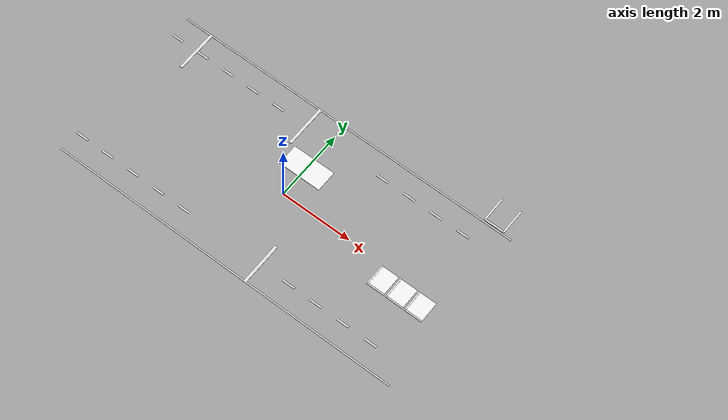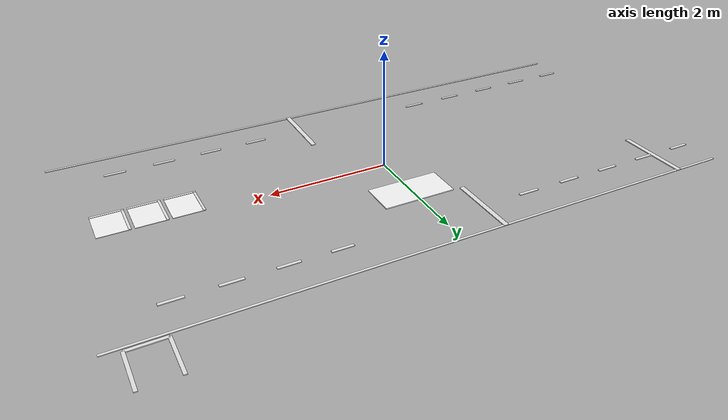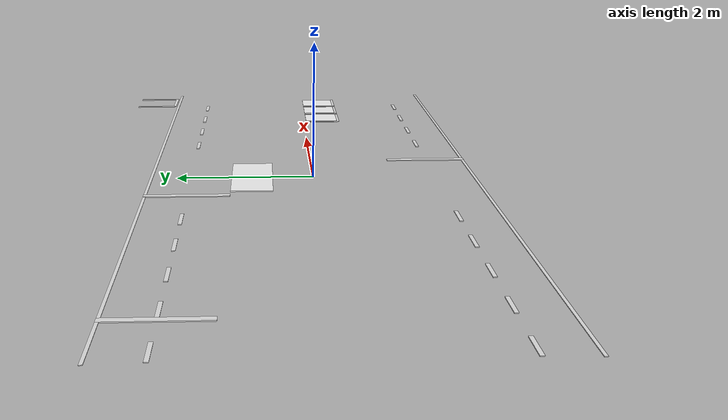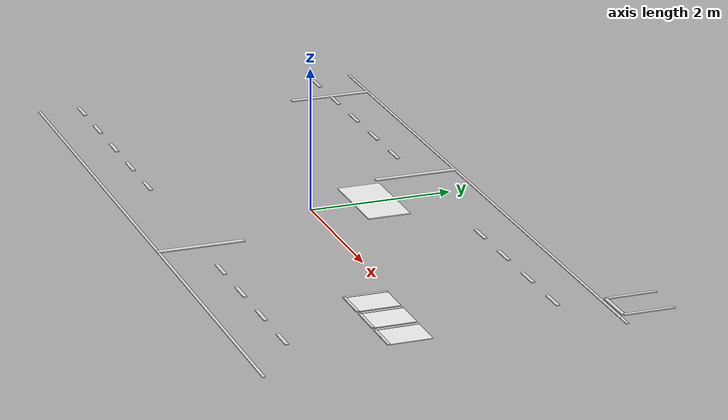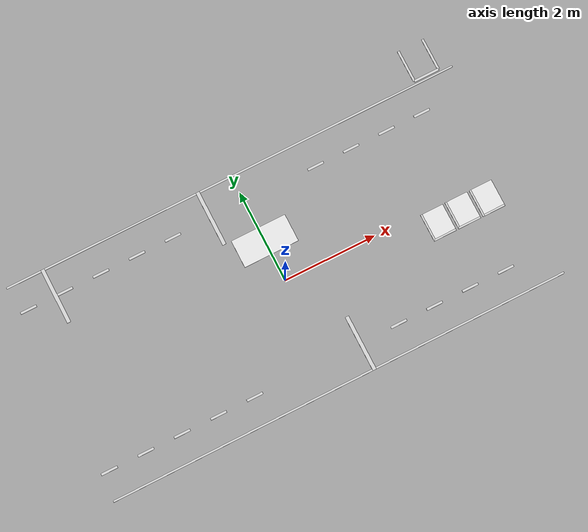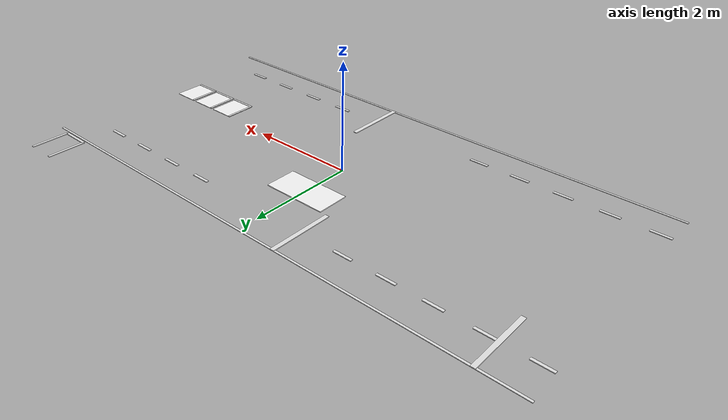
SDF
<sdf version="1.6">
 <world name="sq_community">
  <model name="sq_markings">
   <static>1</static>
   <link name="dash_1.8_-4.80">
    <visual name="dash_1.8_-4.80_v">
     <pose>-4.8 1.8 0.008 0 0 0</pose>
     <geometry><box><size>0.35 0.05 0.012</size></box></geometry>
     <material>
      <script><uri>file://media/materials/scripts/gazebo.material</uri><name>Gazebo/White</name></script>
      <ambient>0.506 0.44 0.0825 1</ambient>
      <diffuse>0.92 0.8 0.15 1</diffuse>
      <specular>0.1 0.1 0.1 1</specular>
      <emissive>0 0 0 1</emissive>
     </material>
    </visual>
   </link>
   <link name="dash_1.8_-4.00">
    <visual name="dash_1.8_-4.00_v">
     <pose>-4 1.8 0.008 0 0 0</pose>
     <geometry><box><size>0.35 0.05 0.012</size></box></geometry>
     <material>
      <script><uri>file://media/materials/scripts/gazebo.material</uri><name>Gazebo/White</name></script>
      <ambient>0.506 0.44 0.0825 1</ambient>
      <diffuse>0.92 0.8 0.15 1</diffuse>
      <specular>0.1 0.1 0.1 1</specular>
      <emissive>0 0 0 1</emissive>
     </material>
    </visual>
   </link>
   <link name="dash_1.8_-3.20">
    <visual name="dash_1.8_-3.20_v">
     <pose>-3.2 1.8 0.008 0 0 0</pose>
     <geometry><box><size>0.35 0.05 0.012</size></box></geometry>
     <material>
      <script><uri>file://media/materials/scripts/gazebo.material</uri><name>Gazebo/White</name></script>
      <ambient>0.506 0.44 0.0825 1</ambient>
      <diffuse>0.92 0.8 0.15 1</diffuse>
      <specular>0.1 0.1 0.1 1</specular>
      <emissive>0 0 0 1</emissive>
     </material>
    </visual>
   </link>
   <link name="dash_1.8_-2.40">
    <visual name="dash_1.8_-2.40_v">
     <pose>-2.4 1.8 0.008 0 0 0</pose>
     <geometry><box><size>0.35 0.05 0.012</size></box></geometry>
     <material>
      <script><uri>file://media/materials/scripts/gazebo.material</uri><name>Gazebo/White</name></script>
      <ambient>0.506 0.44 0.0825 1</ambient>
      <diffuse>0.92 0.8 0.15 1</diffuse>
      <specular>0.1 0.1 0.1 1</specular>
      <emissive>0 0 0 1</emissive>
     </material>
    </visual>
   </link>
   <link name="dash_1.8_-1.60">
    <visual name="dash_1.8_-1.60_v">
     <pose>-1.6 1.8 0.008 0 0 0</pose>
     <geometry><box><size>0.35 0.05 0.012</size></box></geometry>
     <material>
      <script><uri>file://media/materials/scripts/gazebo.material</uri><name>Gazebo/White</name></script>
      <ambient>0.506 0.44 0.0825 1</ambient>
      <diffuse>0.92 0.8 0.15 1</diffuse>
      <specular>0.1 0.1 0.1 1</specular>
      <emissive>0 0 0 1</emissive>
     </material>
    </visual>
   </link>
   <link name="dash_1.8_1.60">
    <visual name="dash_1.8_1.60_v">
     <pose>1.6 1.8 0.008 0 0 0</pose>
     <geometry><box><size>0.35 0.05 0.012</size></box></geometry>
     <material>
      <script><uri>file://media/materials/scripts/gazebo.material</uri><name>Gazebo/White</name></script>
      <ambient>0.506 0.44 0.0825 1</ambient>
      <diffuse>0.92 0.8 0.15 1</diffuse>
      <specular>0.1 0.1 0.1 1</specular>
      <emissive>0 0 0 1</emissive>
     </material>
    </visual>
   </link>
   <link name="dash_1.8_2.40">
    <visual name="dash_1.8_2.40_v">
     <pose>2.4 1.8 0.008 0 0 0</pose>
     <geometry><box><size>0.35 0.05 0.012</size></box></geometry>
     <material>
      <script><uri>file://media/materials/scripts/gazebo.material</uri><name>Gazebo/White</name></script>
      <ambient>0.506 0.44 0.0825 1</ambient>
      <diffuse>0.92 0.8 0.15 1</diffuse>
      <specular>0.1 0.1 0.1 1</specular>
      <emissive>0 0 0 1</emissive>
     </material>
    </visual>
   </link>
   <link name="dash_1.8_3.20">
    <visual name="dash_1.8_3.20_v">
     <pose>3.2 1.8 0.008 0 0 0</pose>
     <geometry><box><size>0.35 0.05 0.012</size></box></geometry>
     <material>
      <script><uri>file://media/materials/scripts/gazebo.material</uri><name>Gazebo/White</name></script>
      <ambient>0.506 0.44 0.0825 1</ambient>
      <diffuse>0.92 0.8 0.15 1</diffuse>
      <specular>0.1 0.1 0.1 1</specular>
      <emissive>0 0 0 1</emissive>
     </material>
    </visual>
   </link>
   <link name="dash_1.8_4.00">
    <visual name="dash_1.8_4.00_v">
     <pose>4 1.8 0.008 0 0 0</pose>
     <geometry><box><size>0.35 0.05 0.012</size></box></geometry>
     <material>
      <script><uri>file://media/materials/scripts/gazebo.material</uri><name>Gazebo/White</name></script>
      <ambient>0.506 0.44 0.0825 1</ambient>
      <diffuse>0.92 0.8 0.15 1</diffuse>
      <specular>0.1 0.1 0.1 1</specular>
      <emissive>0 0 0 1</emissive>
     </material>
    </visual>
   </link>
   <link name="dash_-1.8_-4.80">
    <visual name="dash_-1.8_-4.80_v">
     <pose>-4.8 -1.8 0.008 0 0 0</pose>
     <geometry><box><size>0.35 0.05 0.012</size></box></geometry>
     <material>
      <script><uri>file://media/materials/scripts/gazebo.material</uri><name>Gazebo/White</name></script>
      <ambient>0.506 0.44 0.0825 1</ambient>
      <diffuse>0.92 0.8 0.15 1</diffuse>
      <specular>0.1 0.1 0.1 1</specular>
      <emissive>0 0 0 1</emissive>
     </material>
    </visual>
   </link>
   <link name="dash_-1.8_-4.00">
    <visual name="dash_-1.8_-4.00_v">
     <pose>-4 -1.8 0.008 0 0 0</pose>
     <geometry><box><size>0.35 0.05 0.012</size></box></geometry>
     <material>
      <script><uri>file://media/materials/scripts/gazebo.material</uri><name>Gazebo/White</name></script>
      <ambient>0.506 0.44 0.0825 1</ambient>
      <diffuse>0.92 0.8 0.15 1</diffuse>
      <specular>0.1 0.1 0.1 1</specular>
      <emissive>0 0 0 1</emissive>
     </material>
    </visual>
   </link>
   <link name="dash_-1.8_-3.20">
    <visual name="dash_-1.8_-3.20_v">
     <pose>-3.2 -1.8 0.008 0 0 0</pose>
     <geometry><box><size>0.35 0.05 0.012</size></box></geometry>
     <material>
      <script><uri>file://media/materials/scripts/gazebo.material</uri><name>Gazebo/White</name></script>
      <ambient>0.506 0.44 0.0825 1</ambient>
      <diffuse>0.92 0.8 0.15 1</diffuse>
      <specular>0.1 0.1 0.1 1</specular>
      <emissive>0 0 0 1</emissive>
     </material>
    </visual>
   </link>
   <link name="dash_-1.8_-2.40">
    <visual name="dash_-1.8_-2.40_v">
     <pose>-2.4 -1.8 0.008 0 0 0</pose>
     <geometry><box><size>0.35 0.05 0.012</size></box></geometry>
     <material>
      <script><uri>file://media/materials/scripts/gazebo.material</uri><name>Gazebo/White</name></script>
      <ambient>0.506 0.44 0.0825 1</ambient>
      <diffuse>0.92 0.8 0.15 1</diffuse>
      <specular>0.1 0.1 0.1 1</specular>
      <emissive>0 0 0 1</emissive>
     </material>
    </visual>
   </link>
   <link name="dash_-1.8_-1.60">
    <visual name="dash_-1.8_-1.60_v">
     <pose>-1.6 -1.8 0.008 0 0 0</pose>
     <geometry><box><size>0.35 0.05 0.012</size></box></geometry>
     <material>
      <script><uri>file://media/materials/scripts/gazebo.material</uri><name>Gazebo/White</name></script>
      <ambient>0.506 0.44 0.0825 1</ambient>
      <diffuse>0.92 0.8 0.15 1</diffuse>
      <specular>0.1 0.1 0.1 1</specular>
      <emissive>0 0 0 1</emissive>
     </material>
    </visual>
   </link>
   <link name="dash_-1.8_1.60">
    <visual name="dash_-1.8_1.60_v">
     <pose>1.6 -1.8 0.008 0 0 0</pose>
     <geometry><box><size>0.35 0.05 0.012</size></box></geometry>
     <material>
      <script><uri>file://media/materials/scripts/gazebo.material</uri><name>Gazebo/White</name></script>
      <ambient>0.506 0.44 0.0825 1</ambient>
      <diffuse>0.92 0.8 0.15 1</diffuse>
      <specular>0.1 0.1 0.1 1</specular>
      <emissive>0 0 0 1</emissive>
     </material>
    </visual>
   </link>
   <link name="dash_-1.8_2.40">
    <visual name="dash_-1.8_2.40_v">
     <pose>2.4 -1.8 0.008 0 0 0</pose>
     <geometry><box><size>0.35 0.05 0.012</size></box></geometry>
     <material>
      <script><uri>file://media/materials/scripts/gazebo.material</uri><name>Gazebo/White</name></script>
      <ambient>0.506 0.44 0.0825 1</ambient>
      <diffuse>0.92 0.8 0.15 1</diffuse>
      <specular>0.1 0.1 0.1 1</specular>
      <emissive>0 0 0 1</emissive>
     </material>
    </visual>
   </link>
   <link name="dash_-1.8_3.20">
    <visual name="dash_-1.8_3.20_v">
     <pose>3.2 -1.8 0.008 0 0 0</pose>
     <geometry><box><size>0.35 0.05 0.012</size></box></geometry>
     <material>
      <script><uri>file://media/materials/scripts/gazebo.material</uri><name>Gazebo/White</name></script>
      <ambient>0.506 0.44 0.0825 1</ambient>
      <diffuse>0.92 0.8 0.15 1</diffuse>
      <specular>0.1 0.1 0.1 1</specular>
      <emissive>0 0 0 1</emissive>
     </material>
    </visual>
   </link>
   <link name="dash_-1.8_4.00">
    <visual name="dash_-1.8_4.00_v">
     <pose>4 -1.8 0.008 0 0 0</pose>
     <geometry><box><size>0.35 0.05 0.012</size></box></geometry>
     <material>
      <script><uri>file://media/materials/scripts/gazebo.material</uri><name>Gazebo/White</name></script>
      <ambient>0.506 0.44 0.0825 1</ambient>
      <diffuse>0.92 0.8 0.15 1</diffuse>
      <specular>0.1 0.1 0.1 1</specular>
      <emissive>0 0 0 1</emissive>
     </material>
    </visual>
   </link>
   <link name="edge_1.8">
    <visual name="edge_1.8_v">
     <pose>0 2.38 0.007 0 0 0</pose>
     <geometry><box><size>10 0.04 0.01</size></box></geometry>
     <material>
      <script><uri>file://media/materials/scripts/gazebo.material</uri><name>Gazebo/White</name></script>
      <ambient>0.5225 0.5225 0.5225 1</ambient>
      <diffuse>0.95 0.95 0.95 1</diffuse>
      <specular>0.1 0.1 0.1 1</specular>
      <emissive>0 0 0 1</emissive>
     </material>
    </visual>
   </link>
   <link name="edge_-1.8">
    <visual name="edge_-1.8_v">
     <pose>0 -2.38 0.007 0 0 0</pose>
     <geometry><box><size>10 0.04 0.01</size></box></geometry>
     <material>
      <script><uri>file://media/materials/scripts/gazebo.material</uri><name>Gazebo/White</name></script>
      <ambient>0.5225 0.5225 0.5225 1</ambient>
      <diffuse>0.95 0.95 0.95 1</diffuse>
      <specular>0.1 0.1 0.1 1</specular>
      <emissive>0 0 0 1</emissive>
     </material>
    </visual>
   </link>
   <link name="start_line">
    <visual name="start_line_v">
     <pose>-4.2 1.8 0.009 0 0 0</pose>
     <geometry><box><size>0.08 1.2 0.014</size></box></geometry>
     <material>
      <script><uri>file://media/materials/scripts/gazebo.material</uri><name>Gazebo/White</name></script>
      <ambient>0.5225 0.5225 0.5225 1</ambient>
      <diffuse>0.95 0.95 0.95 1</diffuse>
      <specular>0.1 0.1 0.1 1</specular>
      <emissive>0 0 0 1</emissive>
     </material>
    </visual>
   </link>
   <link name="wait_a">
    <visual name="wait_a_v">
     <pose>-0.75 1.8 0.009 0 0 0</pose>
     <geometry><box><size>0.08 1.2 0.014</size></box></geometry>
     <material>
      <script><uri>file://media/materials/scripts/gazebo.material</uri><name>Gazebo/White</name></script>
      <ambient>0.5225 0.5225 0.5225 1</ambient>
      <diffuse>0.95 0.95 0.95 1</diffuse>
      <specular>0.1 0.1 0.1 1</specular>
      <emissive>0 0 0 1</emissive>
     </material>
    </visual>
   </link>
   <link name="wait_b">
    <visual name="wait_b_v">
     <pose>0.75 -1.8 0.009 0 0 0</pose>
     <geometry><box><size>0.08 1.2 0.014</size></box></geometry>
     <material>
      <script><uri>file://media/materials/scripts/gazebo.material</uri><name>Gazebo/White</name></script>
      <ambient>0.5225 0.5225 0.5225 1</ambient>
      <diffuse>0.95 0.95 0.95 1</diffuse>
      <specular>0.1 0.1 0.1 1</specular>
      <emissive>0 0 0 1</emissive>
     </material>
    </visual>
   </link>
   <link name="crosswalk">
    <visual name="crosswalk_v">
     <pose>0 0.9 0.01 0 0 0</pose>
     <geometry><box><size>1.2 0.6 0.016</size></box></geometry>
     <material>
      <script>
       <uri>model://sq_textures/materials/scripts</uri>
       <uri>model://sq_textures/materials/textures</uri>
       <name>SQ_gnd_crosswalk</name>
      </script>
      <ambient>1 1 1 1</ambient>
      <diffuse>1 1 1 1</diffuse>
      <specular>0.05 0.05 0.05 1</specular>
     </material>
    </visual>
   </link>
   <link name="bay_0_g">
    <visual name="bay_0_g_v">
     <pose>3.25 -0.35 0.005 0 0 0</pose>
     <geometry><box><size>0.5 0.6 0.01</size></box></geometry>
     <material>
      <script>
       <uri>model://sq_textures/materials/scripts</uri>
       <uri>model://sq_textures/materials/textures</uri>
       <name>SQ_gnd_parking</name>
      </script>
      <ambient>1 1 1 1</ambient>
      <diffuse>1 1 1 1</diffuse>
      <specular>0.05 0.05 0.05 1</specular>
     </material>
    </visual>
   </link>
   <link name="bay_0_fl">
    <visual name="bay_0_fl_v">
     <pose>3.02 -0.35 0.009 0 0 0</pose>
     <geometry><box><size>0.04 0.6 0.014</size></box></geometry>
     <material>
      <script><uri>file://media/materials/scripts/gazebo.material</uri><name>Gazebo/White</name></script>
      <ambient>0.5225 0.5225 0.5225 1</ambient>
      <diffuse>0.95 0.95 0.95 1</diffuse>
      <specular>0.1 0.1 0.1 1</specular>
      <emissive>0 0 0 1</emissive>
     </material>
    </visual>
   </link>
   <link name="bay_0_bk">
    <visual name="bay_0_bk_v">
     <pose>3.25 -0.63 0.009 0 0 0</pose>
     <geometry><box><size>0.5 0.04 0.014</size></box></geometry>
     <material>
      <script><uri>file://media/materials/scripts/gazebo.material</uri><name>Gazebo/White</name></script>
      <ambient>0.5225 0.5225 0.5225 1</ambient>
      <diffuse>0.95 0.95 0.95 1</diffuse>
      <specular>0.1 0.1 0.1 1</specular>
      <emissive>0 0 0 1</emissive>
     </material>
    </visual>
   </link>
   <link name="bay_1_g">
    <visual name="bay_1_g_v">
     <pose>3.8 -0.35 0.005 0 0 0</pose>
     <geometry><box><size>0.5 0.6 0.01</size></box></geometry>
     <material>
      <script>
       <uri>model://sq_textures/materials/scripts</uri>
       <uri>model://sq_textures/materials/textures</uri>
       <name>SQ_gnd_parking</name>
      </script>
      <ambient>1 1 1 1</ambient>
      <diffuse>1 1 1 1</diffuse>
      <specular>0.05 0.05 0.05 1</specular>
     </material>
    </visual>
   </link>
   <link name="bay_1_fl">
    <visual name="bay_1_fl_v">
     <pose>3.57 -0.35 0.009 0 0 0</pose>
     <geometry><box><size>0.04 0.6 0.014</size></box></geometry>
     <material>
      <script><uri>file://media/materials/scripts/gazebo.material</uri><name>Gazebo/White</name></script>
      <ambient>0.5225 0.5225 0.5225 1</ambient>
      <diffuse>0.95 0.95 0.95 1</diffuse>
      <specular>0.1 0.1 0.1 1</specular>
      <emissive>0 0 0 1</emissive>
     </material>
    </visual>
   </link>
   <link name="bay_1_bk">
    <visual name="bay_1_bk_v">
     <pose>3.8 -0.63 0.009 0 0 0</pose>
     <geometry><box><size>0.5 0.04 0.014</size></box></geometry>
     <material>
      <script><uri>file://media/materials/scripts/gazebo.material</uri><name>Gazebo/White</name></script>
      <ambient>0.5225 0.5225 0.5225 1</ambient>
      <diffuse>0.95 0.95 0.95 1</diffuse>
      <specular>0.1 0.1 0.1 1</specular>
      <emissive>0 0 0 1</emissive>
     </material>
    </visual>
   </link>
   <link name="bay_2_g">
    <visual name="bay_2_g_v">
     <pose>4.35 -0.35 0.005 0 0 0</pose>
     <geometry><box><size>0.5 0.6 0.01</size></box></geometry>
     <material>
      <script>
       <uri>model://sq_textures/materials/scripts</uri>
       <uri>model://sq_textures/materials/textures</uri>
       <name>SQ_gnd_parking</name>
      </script>
      <ambient>1 1 1 1</ambient>
      <diffuse>1 1 1 1</diffuse>
      <specular>0.05 0.05 0.05 1</specular>
     </material>
    </visual>
   </link>
   <link name="bay_2_fl">
    <visual name="bay_2_fl_v">
     <pose>4.12 -0.35 0.009 0 0 0</pose>
     <geometry><box><size>0.04 0.6 0.014</size></box></geometry>
     <material>
      <script><uri>file://media/materials/scripts/gazebo.material</uri><name>Gazebo/White</name></script>
      <ambient>0.5225 0.5225 0.5225 1</ambient>
      <diffuse>0.95 0.95 0.95 1</diffuse>
      <specular>0.1 0.1 0.1 1</specular>
      <emissive>0 0 0 1</emissive>
     </material>
    </visual>
   </link>
   <link name="bay_2_bk">
    <visual name="bay_2_bk_v">
     <pose>4.35 -0.63 0.009 0 0 0</pose>
     <geometry><box><size>0.5 0.04 0.014</size></box></geometry>
     <material>
      <script><uri>file://media/materials/scripts/gazebo.material</uri><name>Gazebo/White</name></script>
      <ambient>0.5225 0.5225 0.5225 1</ambient>
      <diffuse>0.95 0.95 0.95 1</diffuse>
      <specular>0.1 0.1 0.1 1</specular>
      <emissive>0 0 0 1</emissive>
     </material>
    </visual>
   </link>
   <link name="slot_-0.28_0.00">
    <visual name="slot_-0.28_0.00_v">
     <pose>4.175 2.8 0.009 0 0 0</pose>
     <geometry><box><size>0.05 0.7 0.014</size></box></geometry>
     <material>
      <script><uri>file://media/materials/scripts/gazebo.material</uri><name>Gazebo/White</name></script>
      <ambient>0.5225 0.5225 0.5225 1</ambient>
      <diffuse>0.95 0.95 0.95 1</diffuse>
      <specular>0.1 0.1 0.1 1</specular>
      <emissive>0 0 0 1</emissive>
     </material>
    </visual>
   </link>
   <link name="slot_0.28_0.00">
    <visual name="slot_0.28_0.00_v">
     <pose>4.725 2.8 0.009 0 0 0</pose>
     <geometry><box><size>0.05 0.7 0.014</size></box></geometry>
     <material>
      <script><uri>file://media/materials/scripts/gazebo.material</uri><name>Gazebo/White</name></script>
      <ambient>0.5225 0.5225 0.5225 1</ambient>
      <diffuse>0.95 0.95 0.95 1</diffuse>
      <specular>0.1 0.1 0.1 1</specular>
      <emissive>0 0 0 1</emissive>
     </material>
    </visual>
   </link>
   <link name="slot_0.00_-0.35">
    <visual name="slot_0.00_-0.35_v">
     <pose>4.45 2.45 0.009 0 0 0</pose>
     <geometry><box><size>0.55 0.05 0.014</size></box></geometry>
     <material>
      <script><uri>file://media/materials/scripts/gazebo.material</uri><name>Gazebo/White</name></script>
      <ambient>0.5225 0.5225 0.5225 1</ambient>
      <diffuse>0.95 0.95 0.95 1</diffuse>
      <specular>0.1 0.1 0.1 1</specular>
      <emissive>0 0 0 1</emissive>
     </material>
    </visual>
   </link>
  </model>
 </world>
</sdf>
